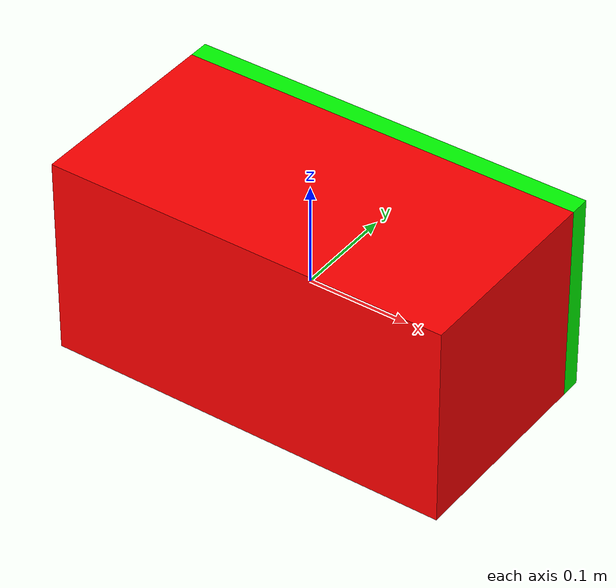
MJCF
<mujoco model="pushed_box">
    <worldbody>
        <body name="pushed_box" pos="0.0 0.0 0.0" quat="1 0 0 0" >
            <geom name="pushed_box_a" pos="0 0 0.0" size="0.2 0.1 0.1" rgba="1 0 0 1.0" type="box" mass="0.05" friction="0.3 0.001 0.0001" priority="1"/>
            <geom name="pushed_box_b" pos="0.0 0.11 0" size="0.2 0.01 0.1" rgba="0 1 0 1.0" type="box" mass="0.05" friction="0.3 0.001 0.0001" priority="1"/>
            <joint name="pushed_Box_joint" type="free"/>
        </body>
    </worldbody>
</mujoco>
